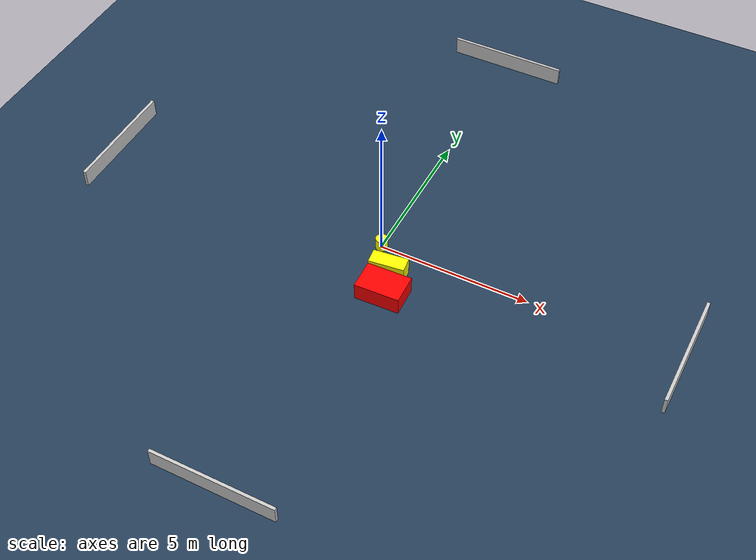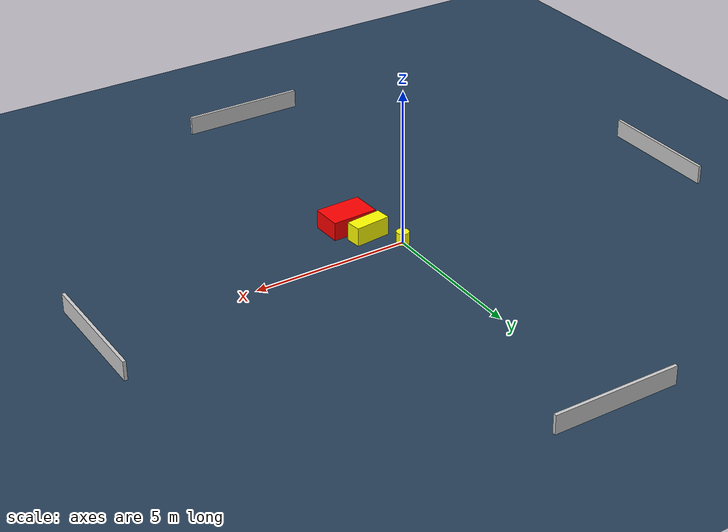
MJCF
<?xml version="1.0" ?>
<mujoco model="generated_environment">
  <option timestep="0.01" integrator="RK4" cone="elliptic"/>
  <default>
    <geom density="1"/>
  </default>
  <asset>
    <texture builtin="gradient" height="3072" name="skybox" rgb1="0.3 0.5 0.7" rgb2="0 0 0" type="skybox" width="512"/>
    <texture builtin="checker" height="300" name="groundplane" rgb1="0.2 0.3 0.4" rgb2="0.1 0.2 0.3" type="2d" width="300"/>
    <material name="groundplane" reflectance="0.2" texrepeat="5 5" texture="groundplane"/>
  </asset>
  <worldbody>
    <light dir="0 0 -1" directional="true" pos="0 0 1.5"/>
    <geom condim="3" friction="0.5 0.005 0.001" material="groundplane" name="floor" pos="0 0 0" size="0 0 0.05" type="plane"/>
    <body name="walls">
      <geom name="wall_1" condim="4" pos="-10.0 0.0 0.3" rgba="0.800000011920929 0.800000011920929 0.800000011920929 1.0" size="0.05 2.0 0.3" type="box"/>
      <geom name="wall_2" condim="4" pos="10.0 0.0 0.3" rgba="0.800000011920929 0.800000011920929 0.800000011920929 1.0" size="0.05 2.0 0.3" type="box"/>
      <geom name="wall_3" condim="4" pos="0.0 -10.0 0.3" rgba="0.800000011920929 0.800000011920929 0.800000011920929 1.0" size="2.0 0.05 0.3" type="box"/>
      <geom name="wall_4" condim="4" pos="0.0 10.0 0.3" rgba="0.800000011920929 0.800000011920929 0.800000011920929 1.0" size="2.0 0.05 0.3" type="box"/>
    </body>
    <body name="robot">
      <joint name="joint_x" type="slide" pos="0 0 0" axis="1 0 0"/>
      <joint name="joint_y" type="slide" pos="0 0 0" axis="0 1 0"/>
      <geom name="robot" type="cylinder" pos="0.0 0.0 0.2" size="0.2 0.2 0.0" mass="5.0" friction="1.0 0.005 0.0001" condim="4" rgba="1.0 1.0 0.0 1.0"/>
    </body>
    <body name="obstacle_1_movable">
      <geom name="obstacle_1_movable" condim="4" pos="0.6759484410851029 -0.8703377647407613 0.3" euler="0 0 276.61912235494515" friction="0.0 0.005 0.001" rgba="1.0 1.0 0.0 1.0" size="0.24962094096393206 0.5833923743857474 0.3" type="box" mass="0.1"/>
      <joint type="free"/>
    </body>
    <body name="obstacle_2_static">
      <geom name="obstacle_2_static" condim="4" pos="0.9220165245186617 -1.7318516600220006 0.3" euler="0 0 182.044213049851" friction="0.0 0.005 0.001" rgba="1.0 0.0 0.0 1.0" size="0.7379039473668509 0.492425096112227 0.3" type="box"/>
    </body>
  </worldbody>
  <actuator>
    <motor name="actuator_x" joint="joint_x" gear="1" ctrlrange="-1 1"/>
    <motor name="actuator_y" joint="joint_y" gear="1" ctrlrange="-1 1"/>
  </actuator>
</mujoco>
